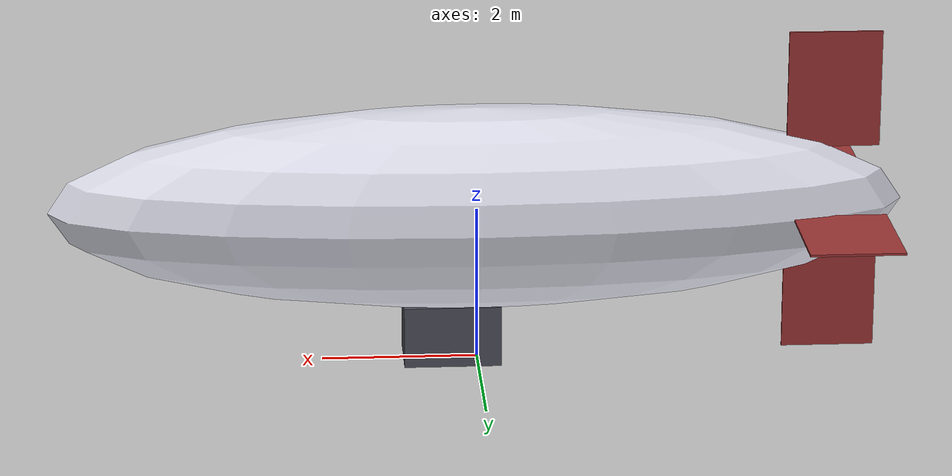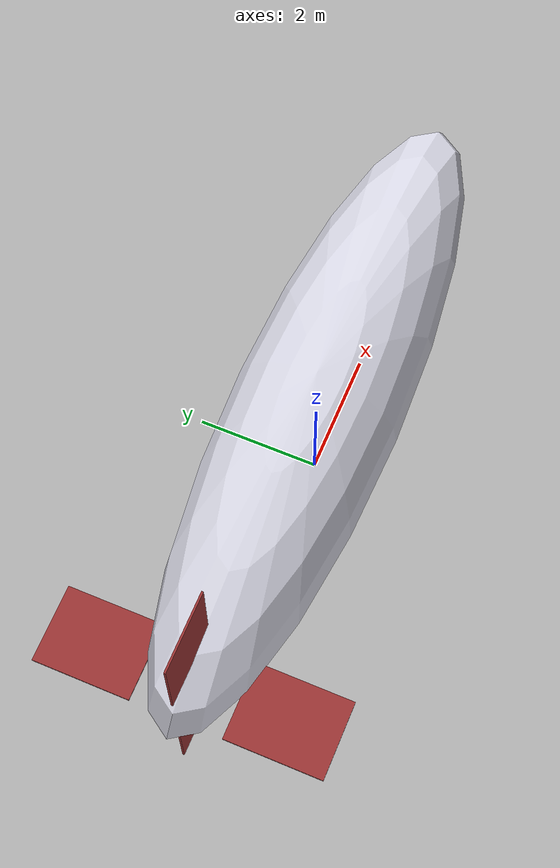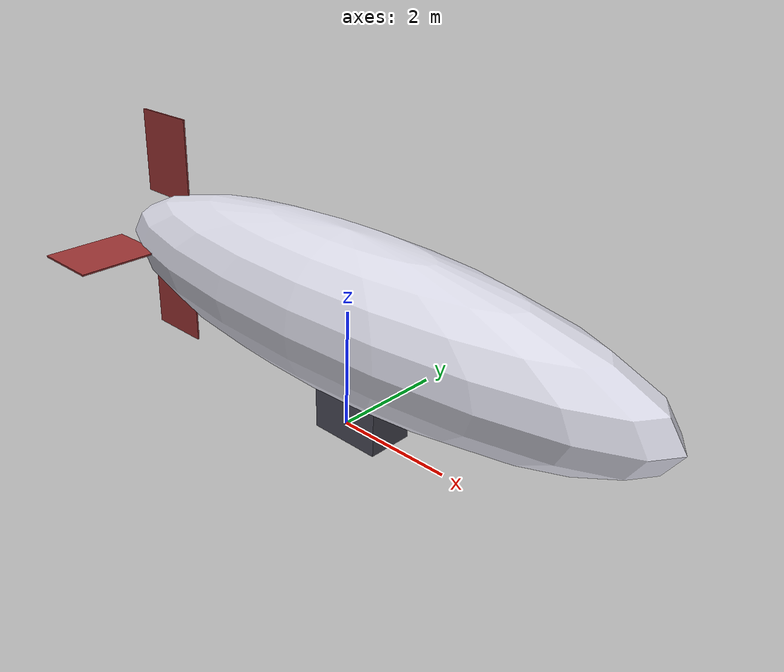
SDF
<?xml version="1.0" encoding="UTF-8"?>
<sdf version="1.10">
  <model name="airship_base_am">
    <self_collide>false</self_collide>
    <static>false</static>
    <link name="base_link">
      <pose>0 0 0 0 0 0</pose>
      <inertial>
        <pose>0.0067 0.0000 0.8170 0 0 0</pose>
        <mass>48.0</mass>
        <inertia>
          <ixx>41.0847</ixx>
          <iyy>151.4753</iyy>
          <izz>126.8963</izz>
          <ixy>0.0000</ixy>
          <ixz>20.0700</ixz>
          <iyz>0.0000</iyz>
        </inertia>
        <fluid_added_mass>
          <xx>3.65293</xx>
          <yy>41.67889</yy>
          <zz>41.67889</zz>
          <xq>7.48850</xq>
          <yp>-85.44173</yp>
          <pp>175.15555</pp>
          <qq>207.59558</qq>
          <rr>192.24415</rr>
        </fluid_added_mass>
      </inertial>
      <!-- The hull, drawn and collided alike; buoyancy volume 39.2 m^3 -->
      <collision name="hull_collision">
        <pose>0 0 2.05 0 0 0</pose>
        <geometry>
          <ellipsoid>
            <radii>5.48570 1.30612 1.30612</radii>
          </ellipsoid>
        </geometry>
      </collision>
      <!-- Ground contact; buoyancy volume 0.8 m^3 -->
      <collision name="gondola_collision">
        <pose>0.3277 0 0.4 0 0 0</pose>
        <geometry>
          <box>
            <size>1.25 0.8 0.8</size>
          </box>
        </geometry>
        <surface>
          <contact>
            <ode>
              <min_depth>0.001</min_depth>
              <max_vel>0</max_vel>
            </ode>
          </contact>
          <friction>
            <ode />
          </friction>
        </surface>
      </collision>
      <visual name="hull_visual">
        <pose>0 0 2.05 0 0 0</pose>
        <geometry>
          <ellipsoid>
            <radii>5.48570 1.30612 1.30612</radii>
          </ellipsoid>
        </geometry>
        <material>
          <ambient>0.85 0.85 0.9 1</ambient>
          <diffuse>0.85 0.85 0.9 1</diffuse>
          <specular>0.3 0.3 0.3 1</specular>
        </material>
      </visual>
      <visual name="gondola_visual">
        <pose>0.3277 0 0.4 0 0 0</pose>
        <geometry>
          <box>
            <size>1.25 0.8 0.8</size>
          </box>
        </geometry>
        <material>
          <ambient>0.3 0.3 0.35 1</ambient>
          <diffuse>0.3 0.3 0.35 1</diffuse>
          <specular>0.2 0.2 0.2 1</specular>
        </material>
      </visual>
      <visual name="fin_port_visual">
        <pose>-4.5857 1.4768 2.0500 0 0 0</pose>
        <geometry>
          <box>
            <size>1.20 1.52 0.03</size>
          </box>
        </geometry>
        <material>
          <ambient>0.6 0.2 0.2 1</ambient>
          <diffuse>0.6 0.2 0.2 1</diffuse>
        </material>
      </visual>
      <visual name="fin_starboard_visual">
        <pose>-4.5857 -1.4768 2.0500 0 0 0</pose>
        <geometry>
          <box>
            <size>1.20 1.52 0.03</size>
          </box>
        </geometry>
        <material>
          <ambient>0.6 0.2 0.2 1</ambient>
          <diffuse>0.6 0.2 0.2 1</diffuse>
        </material>
      </visual>
      <visual name="fin_top_visual">
        <pose>-4.5857 0.0000 3.5268 0 0 0</pose>
        <geometry>
          <box>
            <size>1.20 0.03 1.52</size>
          </box>
        </geometry>
        <material>
          <ambient>0.6 0.2 0.2 1</ambient>
          <diffuse>0.6 0.2 0.2 1</diffuse>
        </material>
      </visual>
      <visual name="fin_bottom_visual">
        <pose>-4.5857 0.0000 0.6932 0 0 0</pose>
        <geometry>
          <box>
            <size>1.20 0.03 1.28</size>
          </box>
        </geometry>
        <material>
          <ambient>0.6 0.2 0.2 1</ambient>
          <diffuse>0.6 0.2 0.2 1</diffuse>
        </material>
      </visual>
      <sensor name="air_pressure_sensor" type="air_pressure">
        <gz_frame_id>base_link</gz_frame_id>
        <always_on>1</always_on>
        <update_rate>50</update_rate>
        <air_pressure>
          <!-- Noise modeled after BMP390 -->
          <pressure>
            <noise type="gaussian">
              <mean>0</mean>
              <stddev>3</stddev>
            </noise>
          </pressure>
        </air_pressure>
      </sensor>
      <sensor name="magnetometer_sensor" type="magnetometer">
        <gz_frame_id>base_link</gz_frame_id>
        <always_on>1</always_on>
        <update_rate>100</update_rate>
        <magnetometer>
          <!-- TODO: update to fix units and coordinate system when we move past Harmonic -->
          <!-- See https://github.com/gazebosim/gz-sim/pull/2460 -->
          <!-- 3mgauss RMS: NOTE: noise is in tesla but sensor reports data in gauss -->
          <!-- Noise modeled after IIS2MDC -->
          <x>
            <noise type="gaussian">
              <stddev>0.0001</stddev>
            </noise>
          </x>
          <y>
            <noise type="gaussian">
              <stddev>0.0001</stddev>
            </noise>
          </y>
          <z>
            <noise type="gaussian">
              <stddev>0.0001</stddev>
            </noise>
          </z>
        </magnetometer>
      </sensor>
      <sensor name="imu_sensor" type="imu">
        <gz_frame_id>base_link</gz_frame_id>
        <always_on>1</always_on>
        <update_rate>250</update_rate>
        <imu>
          <angular_velocity>
            <!-- Noise modeled after IIM42653, 0.05 deg/s in rad/s -->
            <x>
              <noise type="gaussian">
                <mean>0.0</mean>
                <stddev>0.0008726646</stddev>
              </noise>
            </x>
            <y>
              <noise type="gaussian">
                <mean>0.0</mean>
                <stddev>0.0008726646</stddev>
              </noise>
            </y>
            <z>
              <noise type="gaussian">
                <mean>0.0</mean>
                <stddev>0.0008726646</stddev>
              </noise>
            </z>
          </angular_velocity>
          <linear_acceleration>
            <!-- Noise modeled after IIM42653, 0.65/0.70 mg-rms in m/s^2 -->
            <x>
              <noise type="gaussian">
                <mean>0.0</mean>
                <stddev>0.00637</stddev>
              </noise>
            </x>
            <y>
              <noise type="gaussian">
                <mean>0.0</mean>
                <stddev>0.00637</stddev>
              </noise>
            </y>
            <z>
              <noise type="gaussian">
                <mean>0.0</mean>
                <stddev>0.00686</stddev>
              </noise>
            </z>
          </linear_acceleration>
        </imu>
      </sensor>
      <sensor name="navsat_sensor" type="navsat">
        <gz_frame_id>base_link</gz_frame_id>
        <always_on>1</always_on>
        <update_rate>30</update_rate>
      </sensor>
    </link>
  </model>
</sdf>
